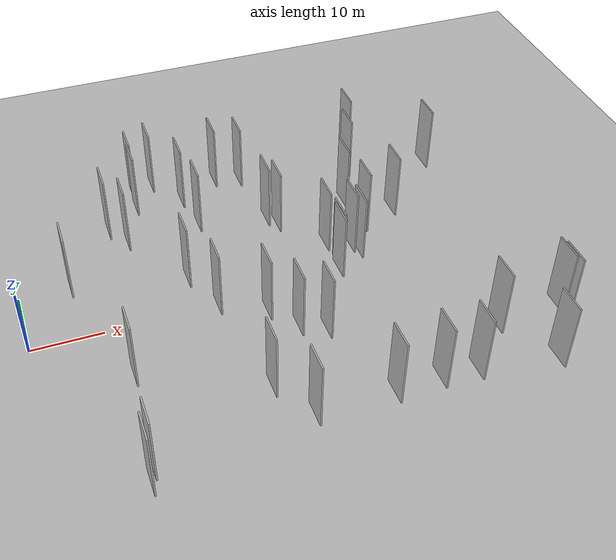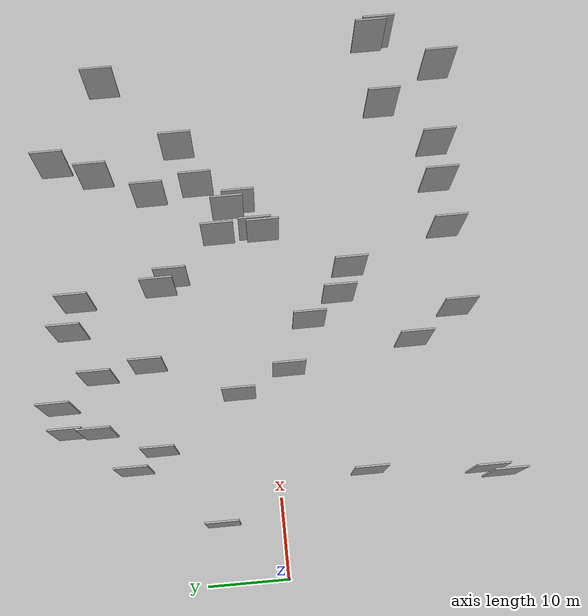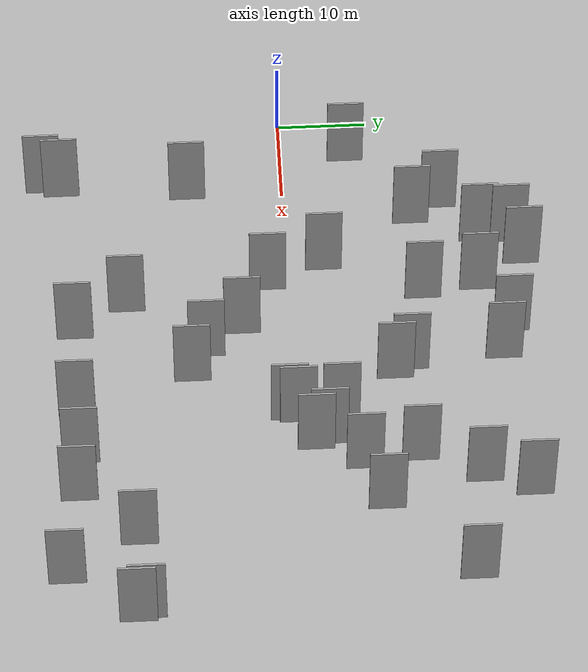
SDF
<?xml version="1.0" encoding="utf-8"?>

<sdf version="1.6">

   <world name="default">

      <gui fullscreen="0">

         <camera name="user_camera">

            <pose>-15 0 4.57585 0 0 0</pose>

            <view_controller>orbit</view_controller>

         </camera>

      </gui>

      <scene>

         <sky>

           <clouds>

             <speed>12</speed>

           </clouds>

         </sky>

         <ambient>0.4 0.4 0.4 1</ambient>

         <background>0.7 0.7 0.7 1</background>

         <shadows>1</shadows>

      </scene>

      <gravity>0 0 -9.8066</gravity>

      <magnetic_field>6e-06 2.3e-05 -4.2e-05</magnetic_field>

      <physics default="0" name="default_physics" type="ode">

         <ode>

            <solver>

               <type>quick</type>

               <iters>10</iters>

               <sor>1.0</sor>

               <use_dynamic_moi_rescaling>0</use_dynamic_moi_rescaling>

            </solver>

            <constraints>

               <cfm>0</cfm>

               <erp>0.2</erp>

               <contact_max_correcting_vel>100</contact_max_correcting_vel>

               <contact_surface_layer>0.001</contact_surface_layer>

            </constraints>

         </ode>

         <max_step_size>0.004</max_step_size>

         <real_time_factor>1</real_time_factor>

         <real_time_update_rate>250</real_time_update_rate>

      </physics>

      <light name="sun" type="directional">

         <cast_shadows>1</cast_shadows>

         <pose>0 0 10 0 0 0</pose>

         <diffuse>0.8 0.8 0.8 1</diffuse>

         <specular>0.2 0.2 0.2 1</specular>

         <attenuation>

            <range>1000</range>

            <constant>0.9</constant>

            <linear>0.01</linear>

            <quadratic>0.001</quadratic>

         </attenuation>

         <direction>-0.5 0.1 -0.9</direction>

      </light>

      <include>

         <name>ground_plane_1</name>

         <uri>model://HANNAS_ground_plane</uri>

         <pose>0 0 0  0 0 0</pose>

      </include>

      <include>

         <name>ground_plane_2</name>

         <uri>model://HANNAS_ground_plane</uri>

         <pose>100 0 0  0 0 0</pose>

      </include>

      <model name="HANNAS_wall_1">

         <static>1</static>

         <pose frame="">67.3422 -16.6134 2.5 0.000000 0.000000 1.570796</pose>

         <link name="link">

            <pose frame="">0 0 5.00 0 0 0</pose>

            <collision name="collision">

               <geometry>

                  <box>

                     <size>4.00 0.2 10.00</size>

                  </box>

               </geometry>

               <max_contacts>10</max_contacts>

               <surface>

                  <contact>

                     <ode/>

                  </contact>

                  <bounce/>

                  <friction>

                     <torsional>

                        <ode/>

                     </torsional>

                     <ode/>

                  </friction>

               </surface>

            </collision>

            <visual name="visual">

               <cast_shadows>0</cast_shadows>

               <geometry>

                  <box>

                     <size>4.00 0.2 10.00</size>

                  </box>

               </geometry>

               <material>

                  <script>

                     <uri>model://HANNAS_wall/materials/scripts</uri>

                     <uri>model://HANNAS_wall/materials/textures</uri>

                     <name>vrc/HANNAS_wall</name>

                  </script>

               </material>

            </visual>

            <self_collide>0</self_collide>

            <enable_wind>0</enable_wind>

            <kinematic>0</kinematic>

         </link>

      </model>

      <model name="HANNAS_wall_2">

         <static>1</static>

         <pose frame="">37.7142 11.1128 2.5 0.000000 0.000000 1.570796</pose>

         <link name="link">

            <pose frame="">0 0 5.00 0 0 0</pose>

            <collision name="collision">

               <geometry>

                  <box>

                     <size>4.00 0.2 10.00</size>

                  </box>

               </geometry>

               <max_contacts>10</max_contacts>

               <surface>

                  <contact>

                     <ode/>

                  </contact>

                  <bounce/>

                  <friction>

                     <torsional>

                        <ode/>

                     </torsional>

                     <ode/>

                  </friction>

               </surface>

            </collision>

            <visual name="visual">

               <cast_shadows>0</cast_shadows>

               <geometry>

                  <box>

                     <size>4.00 0.2 10.00</size>

                  </box>

               </geometry>

               <material>

                  <script>

                     <uri>model://HANNAS_wall/materials/scripts</uri>

                     <uri>model://HANNAS_wall/materials/textures</uri>

                     <name>vrc/HANNAS_wall</name>

                  </script>

               </material>

            </visual>

            <self_collide>0</self_collide>

            <enable_wind>0</enable_wind>

            <kinematic>0</kinematic>

         </link>

      </model>

      <model name="HANNAS_wall_3">

         <static>1</static>

         <pose frame="">54.7475 9.1924 2.5 0.000000 0.000000 1.570796</pose>

         <link name="link">

            <pose frame="">0 0 5.00 0 0 0</pose>

            <collision name="collision">

               <geometry>

                  <box>

                     <size>4.00 0.2 10.00</size>

                  </box>

               </geometry>

               <max_contacts>10</max_contacts>

               <surface>

                  <contact>

                     <ode/>

                  </contact>

                  <bounce/>

                  <friction>

                     <torsional>

                        <ode/>

                     </torsional>

                     <ode/>

                  </friction>

               </surface>

            </collision>

            <visual name="visual">

               <cast_shadows>0</cast_shadows>

               <geometry>

                  <box>

                     <size>4.00 0.2 10.00</size>

                  </box>

               </geometry>

               <material>

                  <script>

                     <uri>model://HANNAS_wall/materials/scripts</uri>

                     <uri>model://HANNAS_wall/materials/textures</uri>

                     <name>vrc/HANNAS_wall</name>

                  </script>

               </material>

            </visual>

            <self_collide>0</self_collide>

            <enable_wind>0</enable_wind>

            <kinematic>0</kinematic>

         </link>

      </model>

      <model name="HANNAS_wall_4">

         <static>1</static>

         <pose frame="">22.6346 25.9920 2.5 0.000000 0.000000 1.570796</pose>

         <link name="link">

            <pose frame="">0 0 5.00 0 0 0</pose>

            <collision name="collision">

               <geometry>

                  <box>

                     <size>4.00 0.2 10.00</size>

                  </box>

               </geometry>

               <max_contacts>10</max_contacts>

               <surface>

                  <contact>

                     <ode/>

                  </contact>

                  <bounce/>

                  <friction>

                     <torsional>

                        <ode/>

                     </torsional>

                     <ode/>

                  </friction>

               </surface>

            </collision>

            <visual name="visual">

               <cast_shadows>0</cast_shadows>

               <geometry>

                  <box>

                     <size>4.00 0.2 10.00</size>

                  </box>

               </geometry>

               <material>

                  <script>

                     <uri>model://HANNAS_wall/materials/scripts</uri>

                     <uri>model://HANNAS_wall/materials/textures</uri>

                     <name>vrc/HANNAS_wall</name>

                  </script>

               </material>

            </visual>

            <self_collide>0</self_collide>

            <enable_wind>0</enable_wind>

            <kinematic>0</kinematic>

         </link>

      </model>

      <model name="HANNAS_wall_5">

         <static>1</static>

         <pose frame="">27.3170 -17.8542 2.5 0.000000 0.000000 1.570796</pose>

         <link name="link">

            <pose frame="">0 0 5.00 0 0 0</pose>

            <collision name="collision">

               <geometry>

                  <box>

                     <size>4.00 0.2 10.00</size>

                  </box>

               </geometry>

               <max_contacts>10</max_contacts>

               <surface>

                  <contact>

                     <ode/>

                  </contact>

                  <bounce/>

                  <friction>

                     <torsional>

                        <ode/>

                     </torsional>

                     <ode/>

                  </friction>

               </surface>

            </collision>

            <visual name="visual">

               <cast_shadows>0</cast_shadows>

               <geometry>

                  <box>

                     <size>4.00 0.2 10.00</size>

                  </box>

               </geometry>

               <material>

                  <script>

                     <uri>model://HANNAS_wall/materials/scripts</uri>

                     <uri>model://HANNAS_wall/materials/textures</uri>

                     <name>vrc/HANNAS_wall</name>

                  </script>

               </material>

            </visual>

            <self_collide>0</self_collide>

            <enable_wind>0</enable_wind>

            <kinematic>0</kinematic>

         </link>

      </model>

      <model name="HANNAS_wall_6">

         <static>1</static>

         <pose frame="">42.7058 -0.6624 2.5 0.000000 0.000000 1.570796</pose>

         <link name="link">

            <pose frame="">0 0 5.00 0 0 0</pose>

            <collision name="collision">

               <geometry>

                  <box>

                     <size>4.00 0.2 10.00</size>

                  </box>

               </geometry>

               <max_contacts>10</max_contacts>

               <surface>

                  <contact>

                     <ode/>

                  </contact>

                  <bounce/>

                  <friction>

                     <torsional>

                        <ode/>

                     </torsional>

                     <ode/>

                  </friction>

               </surface>

            </collision>

            <visual name="visual">

               <cast_shadows>0</cast_shadows>

               <geometry>

                  <box>

                     <size>4.00 0.2 10.00</size>

                  </box>

               </geometry>

               <material>

                  <script>

                     <uri>model://HANNAS_wall/materials/scripts</uri>

                     <uri>model://HANNAS_wall/materials/textures</uri>

                     <name>vrc/HANNAS_wall</name>

                  </script>

               </material>

            </visual>

            <self_collide>0</self_collide>

            <enable_wind>0</enable_wind>

            <kinematic>0</kinematic>

         </link>

      </model>

      <model name="HANNAS_wall_7">

         <static>1</static>

         <pose frame="">19.4963 24.7932 2.5 0.000000 0.000000 1.570796</pose>

         <link name="link">

            <pose frame="">0 0 5.00 0 0 0</pose>

            <collision name="collision">

               <geometry>

                  <box>

                     <size>4.00 0.2 10.00</size>

                  </box>

               </geometry>

               <max_contacts>10</max_contacts>

               <surface>

                  <contact>

                     <ode/>

                  </contact>

                  <bounce/>

                  <friction>

                     <torsional>

                        <ode/>

                     </torsional>

                     <ode/>

                  </friction>

               </surface>

            </collision>

            <visual name="visual">

               <cast_shadows>0</cast_shadows>

               <geometry>

                  <box>

                     <size>4.00 0.2 10.00</size>

                  </box>

               </geometry>

               <material>

                  <script>

                     <uri>model://HANNAS_wall/materials/scripts</uri>

                     <uri>model://HANNAS_wall/materials/textures</uri>

                     <name>vrc/HANNAS_wall</name>

                  </script>

               </material>

            </visual>

            <self_collide>0</self_collide>

            <enable_wind>0</enable_wind>

            <kinematic>0</kinematic>

         </link>

      </model>

      <model name="HANNAS_wall_8">

         <static>1</static>

         <pose frame="">35.5507 23.1184 2.5 0.000000 0.000000 1.570796</pose>

         <link name="link">

            <pose frame="">0 0 5.00 0 0 0</pose>

            <collision name="collision">

               <geometry>

                  <box>

                     <size>4.00 0.2 10.00</size>

                  </box>

               </geometry>

               <max_contacts>10</max_contacts>

               <surface>

                  <contact>

                     <ode/>

                  </contact>

                  <bounce/>

                  <friction>

                     <torsional>

                        <ode/>

                     </torsional>

                     <ode/>

                  </friction>

               </surface>

            </collision>

            <visual name="visual">

               <cast_shadows>0</cast_shadows>

               <geometry>

                  <box>

                     <size>4.00 0.2 10.00</size>

                  </box>

               </geometry>

               <material>

                  <script>

                     <uri>model://HANNAS_wall/materials/scripts</uri>

                     <uri>model://HANNAS_wall/materials/textures</uri>

                     <name>vrc/HANNAS_wall</name>

                  </script>

               </material>

            </visual>

            <self_collide>0</self_collide>

            <enable_wind>0</enable_wind>

            <kinematic>0</kinematic>

         </link>

      </model>

      <model name="HANNAS_wall_9">

         <static>1</static>

         <pose frame="">11.8561 -10.7022 2.5 0.000000 0.000000 1.570796</pose>

         <link name="link">

            <pose frame="">0 0 5.00 0 0 0</pose>

            <collision name="collision">

               <geometry>

                  <box>

                     <size>4.00 0.2 10.00</size>

                  </box>

               </geometry>

               <max_contacts>10</max_contacts>

               <surface>

                  <contact>

                     <ode/>

                  </contact>

                  <bounce/>

                  <friction>

                     <torsional>

                        <ode/>

                     </torsional>

                     <ode/>

                  </friction>

               </surface>

            </collision>

            <visual name="visual">

               <cast_shadows>0</cast_shadows>

               <geometry>

                  <box>

                     <size>4.00 0.2 10.00</size>

                  </box>

               </geometry>

               <material>

                  <script>

                     <uri>model://HANNAS_wall/materials/scripts</uri>

                     <uri>model://HANNAS_wall/materials/textures</uri>

                     <name>vrc/HANNAS_wall</name>

                  </script>

               </material>

            </visual>

            <self_collide>0</self_collide>

            <enable_wind>0</enable_wind>

            <kinematic>0</kinematic>

         </link>

      </model>

      <model name="HANNAS_wall_10">

         <static>1</static>

         <pose frame="">30.8755 -5.2989 2.5 0.000000 0.000000 1.570796</pose>

         <link name="link">

            <pose frame="">0 0 5.00 0 0 0</pose>

            <collision name="collision">

               <geometry>

                  <box>

                     <size>4.00 0.2 10.00</size>

                  </box>

               </geometry>

               <max_contacts>10</max_contacts>

               <surface>

                  <contact>

                     <ode/>

                  </contact>

                  <bounce/>

                  <friction>

                     <torsional>

                        <ode/>

                     </torsional>

                     <ode/>

                  </friction>

               </surface>

            </collision>

            <visual name="visual">

               <cast_shadows>0</cast_shadows>

               <geometry>

                  <box>

                     <size>4.00 0.2 10.00</size>

                  </box>

               </geometry>

               <material>

                  <script>

                     <uri>model://HANNAS_wall/materials/scripts</uri>

                     <uri>model://HANNAS_wall/materials/textures</uri>

                     <name>vrc/HANNAS_wall</name>

                  </script>

               </material>

            </visual>

            <self_collide>0</self_collide>

            <enable_wind>0</enable_wind>

            <kinematic>0</kinematic>

         </link>

      </model>

      <model name="HANNAS_wall_11">

         <static>1</static>

         <pose frame="">67.7193 -17.6005 2.5 0.000000 0.000000 1.570796</pose>

         <link name="link">

            <pose frame="">0 0 5.00 0 0 0</pose>

            <collision name="collision">

               <geometry>

                  <box>

                     <size>4.00 0.2 10.00</size>

                  </box>

               </geometry>

               <max_contacts>10</max_contacts>

               <surface>

                  <contact>

                     <ode/>

                  </contact>

                  <bounce/>

                  <friction>

                     <torsional>

                        <ode/>

                     </torsional>

                     <ode/>

                  </friction>

               </surface>

            </collision>

            <visual name="visual">

               <cast_shadows>0</cast_shadows>

               <geometry>

                  <box>

                     <size>4.00 0.2 10.00</size>

                  </box>

               </geometry>

               <material>

                  <script>

                     <uri>model://HANNAS_wall/materials/scripts</uri>

                     <uri>model://HANNAS_wall/materials/textures</uri>

                     <name>vrc/HANNAS_wall</name>

                  </script>

               </material>

            </visual>

            <self_collide>0</self_collide>

            <enable_wind>0</enable_wind>

            <kinematic>0</kinematic>

         </link>

      </model>

      <model name="HANNAS_wall_12">

         <static>1</static>

         <pose frame="">53.6920 25.0556 2.5 0.000000 0.000000 1.570796</pose>

         <link name="link">

            <pose frame="">0 0 5.00 0 0 0</pose>

            <collision name="collision">

               <geometry>

                  <box>

                     <size>4.00 0.2 10.00</size>

                  </box>

               </geometry>

               <max_contacts>10</max_contacts>

               <surface>

                  <contact>

                     <ode/>

                  </contact>

                  <bounce/>

                  <friction>

                     <torsional>

                        <ode/>

                     </torsional>

                     <ode/>

                  </friction>

               </surface>

            </collision>

            <visual name="visual">

               <cast_shadows>0</cast_shadows>

               <geometry>

                  <box>

                     <size>4.00 0.2 10.00</size>

                  </box>

               </geometry>

               <material>

                  <script>

                     <uri>model://HANNAS_wall/materials/scripts</uri>

                     <uri>model://HANNAS_wall/materials/textures</uri>

                     <name>vrc/HANNAS_wall</name>

                  </script>

               </material>

            </visual>

            <self_collide>0</self_collide>

            <enable_wind>0</enable_wind>

            <kinematic>0</kinematic>

         </link>

      </model>

      <model name="HANNAS_wall_13">

         <static>1</static>

         <pose frame="">41.1027 -23.5649 2.5 0.000000 0.000000 1.570796</pose>

         <link name="link">

            <pose frame="">0 0 5.00 0 0 0</pose>

            <collision name="collision">

               <geometry>

                  <box>

                     <size>4.00 0.2 10.00</size>

                  </box>

               </geometry>

               <max_contacts>10</max_contacts>

               <surface>

                  <contact>

                     <ode/>

                  </contact>

                  <bounce/>

                  <friction>

                     <torsional>

                        <ode/>

                     </torsional>

                     <ode/>

                  </friction>

               </surface>

            </collision>

            <visual name="visual">

               <cast_shadows>0</cast_shadows>

               <geometry>

                  <box>

                     <size>4.00 0.2 10.00</size>

                  </box>

               </geometry>

               <material>

                  <script>

                     <uri>model://HANNAS_wall/materials/scripts</uri>

                     <uri>model://HANNAS_wall/materials/textures</uri>

                     <name>vrc/HANNAS_wall</name>

                  </script>

               </material>

            </visual>

            <self_collide>0</self_collide>

            <enable_wind>0</enable_wind>

            <kinematic>0</kinematic>

         </link>

      </model>

      <model name="HANNAS_wall_14">

         <static>1</static>

         <pose frame="">7.1242 7.2730 2.5 0.000000 0.000000 1.570796</pose>

         <link name="link">

            <pose frame="">0 0 5.00 0 0 0</pose>

            <collision name="collision">

               <geometry>

                  <box>

                     <size>4.00 0.2 10.00</size>

                  </box>

               </geometry>

               <max_contacts>10</max_contacts>

               <surface>

                  <contact>

                     <ode/>

                  </contact>

                  <bounce/>

                  <friction>

                     <torsional>

                        <ode/>

                     </torsional>

                     <ode/>

                  </friction>

               </surface>

            </collision>

            <visual name="visual">

               <cast_shadows>0</cast_shadows>

               <geometry>

                  <box>

                     <size>4.00 0.2 10.00</size>

                  </box>

               </geometry>

               <material>

                  <script>

                     <uri>model://HANNAS_wall/materials/scripts</uri>

                     <uri>model://HANNAS_wall/materials/textures</uri>

                     <name>vrc/HANNAS_wall</name>

                  </script>

               </material>

            </visual>

            <self_collide>0</self_collide>

            <enable_wind>0</enable_wind>

            <kinematic>0</kinematic>

         </link>

      </model>

      <model name="HANNAS_wall_15">

         <static>1</static>

         <pose frame="">16.4103 14.1137 2.5 0.000000 0.000000 1.570796</pose>

         <link name="link">

            <pose frame="">0 0 5.00 0 0 0</pose>

            <collision name="collision">

               <geometry>

                  <box>

                     <size>4.00 0.2 10.00</size>

                  </box>

               </geometry>

               <max_contacts>10</max_contacts>

               <surface>

                  <contact>

                     <ode/>

                  </contact>

                  <bounce/>

                  <friction>

                     <torsional>

                        <ode/>

                     </torsional>

                     <ode/>

                  </friction>

               </surface>

            </collision>

            <visual name="visual">

               <cast_shadows>0</cast_shadows>

               <geometry>

                  <box>

                     <size>4.00 0.2 10.00</size>

                  </box>

               </geometry>

               <material>

                  <script>

                     <uri>model://HANNAS_wall/materials/scripts</uri>

                     <uri>model://HANNAS_wall/materials/textures</uri>

                     <name>vrc/HANNAS_wall</name>

                  </script>

               </material>

            </visual>

            <self_collide>0</self_collide>

            <enable_wind>0</enable_wind>

            <kinematic>0</kinematic>

         </link>

      </model>

      <model name="HANNAS_wall_16">

         <static>1</static>

         <pose frame="">24.9973 -2.2562 2.5 0.000000 0.000000 1.570796</pose>

         <link name="link">

            <pose frame="">0 0 5.00 0 0 0</pose>

            <collision name="collision">

               <geometry>

                  <box>

                     <size>4.00 0.2 10.00</size>

                  </box>

               </geometry>

               <max_contacts>10</max_contacts>

               <surface>

                  <contact>

                     <ode/>

                  </contact>

                  <bounce/>

                  <friction>

                     <torsional>

                        <ode/>

                     </torsional>

                     <ode/>

                  </friction>

               </surface>

            </collision>

            <visual name="visual">

               <cast_shadows>0</cast_shadows>

               <geometry>

                  <box>

                     <size>4.00 0.2 10.00</size>

                  </box>

               </geometry>

               <material>

                  <script>

                     <uri>model://HANNAS_wall/materials/scripts</uri>

                     <uri>model://HANNAS_wall/materials/textures</uri>

                     <name>vrc/HANNAS_wall</name>

                  </script>

               </material>

            </visual>

            <self_collide>0</self_collide>

            <enable_wind>0</enable_wind>

            <kinematic>0</kinematic>

         </link>

      </model>

      <model name="HANNAS_wall_17">

         <static>1</static>

         <pose frame="">33.7942 -9.2755 2.5 0.000000 0.000000 1.570796</pose>

         <link name="link">

            <pose frame="">0 0 5.00 0 0 0</pose>

            <collision name="collision">

               <geometry>

                  <box>

                     <size>4.00 0.2 10.00</size>

                  </box>

               </geometry>

               <max_contacts>10</max_contacts>

               <surface>

                  <contact>

                     <ode/>

                  </contact>

                  <bounce/>

                  <friction>

                     <torsional>

                        <ode/>

                     </torsional>

                     <ode/>

                  </friction>

               </surface>

            </collision>

            <visual name="visual">

               <cast_shadows>0</cast_shadows>

               <geometry>

                  <box>

                     <size>4.00 0.2 10.00</size>

                  </box>

               </geometry>

               <material>

                  <script>

                     <uri>model://HANNAS_wall/materials/scripts</uri>

                     <uri>model://HANNAS_wall/materials/textures</uri>

                     <name>vrc/HANNAS_wall</name>

                  </script>

               </material>

            </visual>

            <self_collide>0</self_collide>

            <enable_wind>0</enable_wind>

            <kinematic>0</kinematic>

         </link>

      </model>

      <model name="HANNAS_wall_18">

         <static>1</static>

         <pose frame="">49.4468 7.1205 2.5 0.000000 0.000000 1.570796</pose>

         <link name="link">

            <pose frame="">0 0 5.00 0 0 0</pose>

            <collision name="collision">

               <geometry>

                  <box>

                     <size>4.00 0.2 10.00</size>

                  </box>

               </geometry>

               <max_contacts>10</max_contacts>

               <surface>

                  <contact>

                     <ode/>

                  </contact>

                  <bounce/>

                  <friction>

                     <torsional>

                        <ode/>

                     </torsional>

                     <ode/>

                  </friction>

               </surface>

            </collision>

            <visual name="visual">

               <cast_shadows>0</cast_shadows>

               <geometry>

                  <box>

                     <size>4.00 0.2 10.00</size>

                  </box>

               </geometry>

               <material>

                  <script>

                     <uri>model://HANNAS_wall/materials/scripts</uri>

                     <uri>model://HANNAS_wall/materials/textures</uri>

                     <name>vrc/HANNAS_wall</name>

                  </script>

               </material>

            </visual>

            <self_collide>0</self_collide>

            <enable_wind>0</enable_wind>

            <kinematic>0</kinematic>

         </link>

      </model>

      <model name="HANNAS_wall_19">

         <static>1</static>

         <pose frame="">10.8008 -24.8072 2.5 0.000000 0.000000 1.570796</pose>

         <link name="link">

            <pose frame="">0 0 5.00 0 0 0</pose>

            <collision name="collision">

               <geometry>

                  <box>

                     <size>4.00 0.2 10.00</size>

                  </box>

               </geometry>

               <max_contacts>10</max_contacts>

               <surface>

                  <contact>

                     <ode/>

                  </contact>

                  <bounce/>

                  <friction>

                     <torsional>

                        <ode/>

                     </torsional>

                     <ode/>

                  </friction>

               </surface>

            </collision>

            <visual name="visual">

               <cast_shadows>0</cast_shadows>

               <geometry>

                  <box>

                     <size>4.00 0.2 10.00</size>

                  </box>

               </geometry>

               <material>

                  <script>

                     <uri>model://HANNAS_wall/materials/scripts</uri>

                     <uri>model://HANNAS_wall/materials/textures</uri>

                     <name>vrc/HANNAS_wall</name>

                  </script>

               </material>

            </visual>

            <self_collide>0</self_collide>

            <enable_wind>0</enable_wind>

            <kinematic>0</kinematic>

         </link>

      </model>

      <model name="HANNAS_wall_20">

         <static>1</static>

         <pose frame="">31.9187 24.2031 2.5 0.000000 0.000000 1.570796</pose>

         <link name="link">

            <pose frame="">0 0 5.00 0 0 0</pose>

            <collision name="collision">

               <geometry>

                  <box>

                     <size>4.00 0.2 10.00</size>

                  </box>

               </geometry>

               <max_contacts>10</max_contacts>

               <surface>

                  <contact>

                     <ode/>

                  </contact>

                  <bounce/>

                  <friction>

                     <torsional>

                        <ode/>

                     </torsional>

                     <ode/>

                  </friction>

               </surface>

            </collision>

            <visual name="visual">

               <cast_shadows>0</cast_shadows>

               <geometry>

                  <box>

                     <size>4.00 0.2 10.00</size>

                  </box>

               </geometry>

               <material>

                  <script>

                     <uri>model://HANNAS_wall/materials/scripts</uri>

                     <uri>model://HANNAS_wall/materials/textures</uri>

                     <name>vrc/HANNAS_wall</name>

                  </script>

               </material>

            </visual>

            <self_collide>0</self_collide>

            <enable_wind>0</enable_wind>

            <kinematic>0</kinematic>

         </link>

      </model>

      <model name="HANNAS_wall_21">

         <static>1</static>

         <pose frame="">10.1541 -26.7928 2.5 0.000000 0.000000 1.570796</pose>

         <link name="link">

            <pose frame="">0 0 5.00 0 0 0</pose>

            <collision name="collision">

               <geometry>

                  <box>

                     <size>4.00 0.2 10.00</size>

                  </box>

               </geometry>

               <max_contacts>10</max_contacts>

               <surface>

                  <contact>

                     <ode/>

                  </contact>

                  <bounce/>

                  <friction>

                     <torsional>

                        <ode/>

                     </torsional>

                     <ode/>

                  </friction>

               </surface>

            </collision>

            <visual name="visual">

               <cast_shadows>0</cast_shadows>

               <geometry>

                  <box>

                     <size>4.00 0.2 10.00</size>

                  </box>

               </geometry>

               <material>

                  <script>

                     <uri>model://HANNAS_wall/materials/scripts</uri>

                     <uri>model://HANNAS_wall/materials/textures</uri>

                     <name>vrc/HANNAS_wall</name>

                  </script>

               </material>

            </visual>

            <self_collide>0</self_collide>

            <enable_wind>0</enable_wind>

            <kinematic>0</kinematic>

         </link>

      </model>

      <model name="HANNAS_wall_22">

         <static>1</static>

         <pose frame="">48.6685 13.1339 2.5 0.000000 0.000000 1.570796</pose>

         <link name="link">

            <pose frame="">0 0 5.00 0 0 0</pose>

            <collision name="collision">

               <geometry>

                  <box>

                     <size>4.00 0.2 10.00</size>

                  </box>

               </geometry>

               <max_contacts>10</max_contacts>

               <surface>

                  <contact>

                     <ode/>

                  </contact>

                  <bounce/>

                  <friction>

                     <torsional>

                        <ode/>

                     </torsional>

                     <ode/>

                  </friction>

               </surface>

            </collision>

            <visual name="visual">

               <cast_shadows>0</cast_shadows>

               <geometry>

                  <box>

                     <size>4.00 0.2 10.00</size>

                  </box>

               </geometry>

               <material>

                  <script>

                     <uri>model://HANNAS_wall/materials/scripts</uri>

                     <uri>model://HANNAS_wall/materials/textures</uri>

                     <name>vrc/HANNAS_wall</name>

                  </script>

               </material>

            </visual>

            <self_collide>0</self_collide>

            <enable_wind>0</enable_wind>

            <kinematic>0</kinematic>

         </link>

      </model>

      <model name="HANNAS_wall_23">

         <static>1</static>

         <pose frame="">19.2540 21.3739 2.5 0.000000 0.000000 1.570796</pose>

         <link name="link">

            <pose frame="">0 0 5.00 0 0 0</pose>

            <collision name="collision">

               <geometry>

                  <box>

                     <size>4.00 0.2 10.00</size>

                  </box>

               </geometry>

               <max_contacts>10</max_contacts>

               <surface>

                  <contact>

                     <ode/>

                  </contact>

                  <bounce/>

                  <friction>

                     <torsional>

                        <ode/>

                     </torsional>

                     <ode/>

                  </friction>

               </surface>

            </collision>

            <visual name="visual">

               <cast_shadows>0</cast_shadows>

               <geometry>

                  <box>

                     <size>4.00 0.2 10.00</size>

                  </box>

               </geometry>

               <material>

                  <script>

                     <uri>model://HANNAS_wall/materials/scripts</uri>

                     <uri>model://HANNAS_wall/materials/textures</uri>

                     <name>vrc/HANNAS_wall</name>

                  </script>

               </material>

            </visual>

            <self_collide>0</self_collide>

            <enable_wind>0</enable_wind>

            <kinematic>0</kinematic>

         </link>

      </model>

      <model name="HANNAS_wall_24">

         <static>1</static>

         <pose frame="">42.7787 4.9533 2.5 0.000000 0.000000 1.570796</pose>

         <link name="link">

            <pose frame="">0 0 5.00 0 0 0</pose>

            <collision name="collision">

               <geometry>

                  <box>

                     <size>4.00 0.2 10.00</size>

                  </box>

               </geometry>

               <max_contacts>10</max_contacts>

               <surface>

                  <contact>

                     <ode/>

                  </contact>

                  <bounce/>

                  <friction>

                     <torsional>

                        <ode/>

                     </torsional>

                     <ode/>

                  </friction>

               </surface>

            </collision>

            <visual name="visual">

               <cast_shadows>0</cast_shadows>

               <geometry>

                  <box>

                     <size>4.00 0.2 10.00</size>

                  </box>

               </geometry>

               <material>

                  <script>

                     <uri>model://HANNAS_wall/materials/scripts</uri>

                     <uri>model://HANNAS_wall/materials/textures</uri>

                     <name>vrc/HANNAS_wall</name>

                  </script>

               </material>

            </visual>

            <self_collide>0</self_collide>

            <enable_wind>0</enable_wind>

            <kinematic>0</kinematic>

         </link>

      </model>

      <model name="HANNAS_wall_25">

         <static>1</static>

         <pose frame="">30.7555 -23.6122 2.5 0.000000 0.000000 1.570796</pose>

         <link name="link">

            <pose frame="">0 0 5.00 0 0 0</pose>

            <collision name="collision">

               <geometry>

                  <box>

                     <size>4.00 0.2 10.00</size>

                  </box>

               </geometry>

               <max_contacts>10</max_contacts>

               <surface>

                  <contact>

                     <ode/>

                  </contact>

                  <bounce/>

                  <friction>

                     <torsional>

                        <ode/>

                     </torsional>

                     <ode/>

                  </friction>

               </surface>

            </collision>

            <visual name="visual">

               <cast_shadows>0</cast_shadows>

               <geometry>

                  <box>

                     <size>4.00 0.2 10.00</size>

                  </box>

               </geometry>

               <material>

                  <script>

                     <uri>model://HANNAS_wall/materials/scripts</uri>

                     <uri>model://HANNAS_wall/materials/textures</uri>

                     <name>vrc/HANNAS_wall</name>

                  </script>

               </material>

            </visual>

            <self_collide>0</self_collide>

            <enable_wind>0</enable_wind>

            <kinematic>0</kinematic>

         </link>

      </model>

      <model name="HANNAS_wall_26">

         <static>1</static>

         <pose frame="">51.7368 19.8329 2.5 0.000000 0.000000 1.570796</pose>

         <link name="link">

            <pose frame="">0 0 5.00 0 0 0</pose>

            <collision name="collision">

               <geometry>

                  <box>

                     <size>4.00 0.2 10.00</size>

                  </box>

               </geometry>

               <max_contacts>10</max_contacts>

               <surface>

                  <contact>

                     <ode/>

                  </contact>

                  <bounce/>

                  <friction>

                     <torsional>

                        <ode/>

                     </torsional>

                     <ode/>

                  </friction>

               </surface>

            </collision>

            <visual name="visual">

               <cast_shadows>0</cast_shadows>

               <geometry>

                  <box>

                     <size>4.00 0.2 10.00</size>

                  </box>

               </geometry>

               <material>

                  <script>

                     <uri>model://HANNAS_wall/materials/scripts</uri>

                     <uri>model://HANNAS_wall/materials/textures</uri>

                     <name>vrc/HANNAS_wall</name>

                  </script>

               </material>

            </visual>

            <self_collide>0</self_collide>

            <enable_wind>0</enable_wind>

            <kinematic>0</kinematic>

         </link>

      </model>

      <model name="HANNAS_wall_27">

         <static>1</static>

         <pose frame="">26.0303 20.9294 2.5 0.000000 0.000000 1.570796</pose>

         <link name="link">

            <pose frame="">0 0 5.00 0 0 0</pose>

            <collision name="collision">

               <geometry>

                  <box>

                     <size>4.00 0.2 10.00</size>

                  </box>

               </geometry>

               <max_contacts>10</max_contacts>

               <surface>

                  <contact>

                     <ode/>

                  </contact>

                  <bounce/>

                  <friction>

                     <torsional>

                        <ode/>

                     </torsional>

                     <ode/>

                  </friction>

               </surface>

            </collision>

            <visual name="visual">

               <cast_shadows>0</cast_shadows>

               <geometry>

                  <box>

                     <size>4.00 0.2 10.00</size>

                  </box>

               </geometry>

               <material>

                  <script>

                     <uri>model://HANNAS_wall/materials/scripts</uri>

                     <uri>model://HANNAS_wall/materials/textures</uri>

                     <name>vrc/HANNAS_wall</name>

                  </script>

               </material>

            </visual>

            <self_collide>0</self_collide>

            <enable_wind>0</enable_wind>

            <kinematic>0</kinematic>

         </link>

      </model>

      <model name="HANNAS_wall_28">

         <static>1</static>

         <pose frame="">58.0857 -17.2474 2.5 0.000000 0.000000 1.570796</pose>

         <link name="link">

            <pose frame="">0 0 5.00 0 0 0</pose>

            <collision name="collision">

               <geometry>

                  <box>

                     <size>4.00 0.2 10.00</size>

                  </box>

               </geometry>

               <max_contacts>10</max_contacts>

               <surface>

                  <contact>

                     <ode/>

                  </contact>

                  <bounce/>

                  <friction>

                     <torsional>

                        <ode/>

                     </torsional>

                     <ode/>

                  </friction>

               </surface>

            </collision>

            <visual name="visual">

               <cast_shadows>0</cast_shadows>

               <geometry>

                  <box>

                     <size>4.00 0.2 10.00</size>

                  </box>

               </geometry>

               <material>

                  <script>

                     <uri>model://HANNAS_wall/materials/scripts</uri>

                     <uri>model://HANNAS_wall/materials/textures</uri>

                     <name>vrc/HANNAS_wall</name>

                  </script>

               </material>

            </visual>

            <self_collide>0</self_collide>

            <enable_wind>0</enable_wind>

            <kinematic>0</kinematic>

         </link>

      </model>

      <model name="HANNAS_wall_29">

         <static>1</static>

         <pose frame="">47.2939 -23.2404 2.5 0.000000 0.000000 1.570796</pose>

         <link name="link">

            <pose frame="">0 0 5.00 0 0 0</pose>

            <collision name="collision">

               <geometry>

                  <box>

                     <size>4.00 0.2 10.00</size>

                  </box>

               </geometry>

               <max_contacts>10</max_contacts>

               <surface>

                  <contact>

                     <ode/>

                  </contact>

                  <bounce/>

                  <friction>

                     <torsional>

                        <ode/>

                     </torsional>

                     <ode/>

                  </friction>

               </surface>

            </collision>

            <visual name="visual">

               <cast_shadows>0</cast_shadows>

               <geometry>

                  <box>

                     <size>4.00 0.2 10.00</size>

                  </box>

               </geometry>

               <material>

                  <script>

                     <uri>model://HANNAS_wall/materials/scripts</uri>

                     <uri>model://HANNAS_wall/materials/textures</uri>

                     <name>vrc/HANNAS_wall</name>

                  </script>

               </material>

            </visual>

            <self_collide>0</self_collide>

            <enable_wind>0</enable_wind>

            <kinematic>0</kinematic>

         </link>

      </model>

      <model name="HANNAS_wall_30">

         <static>1</static>

         <pose frame="">46.0446 3.4954 2.5 0.000000 0.000000 1.570796</pose>

         <link name="link">

            <pose frame="">0 0 5.00 0 0 0</pose>

            <collision name="collision">

               <geometry>

                  <box>

                     <size>4.00 0.2 10.00</size>

                  </box>

               </geometry>

               <max_contacts>10</max_contacts>

               <surface>

                  <contact>

                     <ode/>

                  </contact>

                  <bounce/>

                  <friction>

                     <torsional>

                        <ode/>

                     </torsional>

                     <ode/>

                  </friction>

               </surface>

            </collision>

            <visual name="visual">

               <cast_shadows>0</cast_shadows>

               <geometry>

                  <box>

                     <size>4.00 0.2 10.00</size>

                  </box>

               </geometry>

               <material>

                  <script>

                     <uri>model://HANNAS_wall/materials/scripts</uri>

                     <uri>model://HANNAS_wall/materials/textures</uri>

                     <name>vrc/HANNAS_wall</name>

                  </script>

               </material>

            </visual>

            <self_collide>0</self_collide>

            <enable_wind>0</enable_wind>

            <kinematic>0</kinematic>

         </link>

      </model>

      <model name="HANNAS_wall_31">

         <static>1</static>

         <pose frame="">64.0466 18.2950 2.5 0.000000 0.000000 1.570796</pose>

         <link name="link">

            <pose frame="">0 0 5.00 0 0 0</pose>

            <collision name="collision">

               <geometry>

                  <box>

                     <size>4.00 0.2 10.00</size>

                  </box>

               </geometry>

               <max_contacts>10</max_contacts>

               <surface>

                  <contact>

                     <ode/>

                  </contact>

                  <bounce/>

                  <friction>

                     <torsional>

                        <ode/>

                     </torsional>

                     <ode/>

                  </friction>

               </surface>

            </collision>

            <visual name="visual">

               <cast_shadows>0</cast_shadows>

               <geometry>

                  <box>

                     <size>4.00 0.2 10.00</size>

                  </box>

               </geometry>

               <material>

                  <script>

                     <uri>model://HANNAS_wall/materials/scripts</uri>

                     <uri>model://HANNAS_wall/materials/textures</uri>

                     <name>vrc/HANNAS_wall</name>

                  </script>

               </material>

            </visual>

            <self_collide>0</self_collide>

            <enable_wind>0</enable_wind>

            <kinematic>0</kinematic>

         </link>

      </model>

      <model name="HANNAS_wall_32">

         <static>1</static>

         <pose frame="">26.9515 14.8065 2.5 0.000000 0.000000 1.570796</pose>

         <link name="link">

            <pose frame="">0 0 5.00 0 0 0</pose>

            <collision name="collision">

               <geometry>

                  <box>

                     <size>4.00 0.2 10.00</size>

                  </box>

               </geometry>

               <max_contacts>10</max_contacts>

               <surface>

                  <contact>

                     <ode/>

                  </contact>

                  <bounce/>

                  <friction>

                     <torsional>

                        <ode/>

                     </torsional>

                     <ode/>

                  </friction>

               </surface>

            </collision>

            <visual name="visual">

               <cast_shadows>0</cast_shadows>

               <geometry>

                  <box>

                     <size>4.00 0.2 10.00</size>

                  </box>

               </geometry>

               <material>

                  <script>

                     <uri>model://HANNAS_wall/materials/scripts</uri>

                     <uri>model://HANNAS_wall/materials/textures</uri>

                     <name>vrc/HANNAS_wall</name>

                  </script>

               </material>

            </visual>

            <self_collide>0</self_collide>

            <enable_wind>0</enable_wind>

            <kinematic>0</kinematic>

         </link>

      </model>

      <model name="HANNAS_wall_33">

         <static>1</static>

         <pose frame="">52.1921 -23.5027 2.5 0.000000 0.000000 1.570796</pose>

         <link name="link">

            <pose frame="">0 0 5.00 0 0 0</pose>

            <collision name="collision">

               <geometry>

                  <box>

                     <size>4.00 0.2 10.00</size>

                  </box>

               </geometry>

               <max_contacts>10</max_contacts>

               <surface>

                  <contact>

                     <ode/>

                  </contact>

                  <bounce/>

                  <friction>

                     <torsional>

                        <ode/>

                     </torsional>

                     <ode/>

                  </friction>

               </surface>

            </collision>

            <visual name="visual">

               <cast_shadows>0</cast_shadows>

               <geometry>

                  <box>

                     <size>4.00 0.2 10.00</size>

                  </box>

               </geometry>

               <material>

                  <script>

                     <uri>model://HANNAS_wall/materials/scripts</uri>

                     <uri>model://HANNAS_wall/materials/textures</uri>

                     <name>vrc/HANNAS_wall</name>

                  </script>

               </material>

            </visual>

            <self_collide>0</self_collide>

            <enable_wind>0</enable_wind>

            <kinematic>0</kinematic>

         </link>

      </model>

      <model name="HANNAS_wall_34">

         <static>1</static>

         <pose frame="">37.0742 -10.9308 2.5 0.000000 0.000000 1.570796</pose>

         <link name="link">

            <pose frame="">0 0 5.00 0 0 0</pose>

            <collision name="collision">

               <geometry>

                  <box>

                     <size>4.00 0.2 10.00</size>

                  </box>

               </geometry>

               <max_contacts>10</max_contacts>

               <surface>

                  <contact>

                     <ode/>

                  </contact>

                  <bounce/>

                  <friction>

                     <torsional>

                        <ode/>

                     </torsional>

                     <ode/>

                  </friction>

               </surface>

            </collision>

            <visual name="visual">

               <cast_shadows>0</cast_shadows>

               <geometry>

                  <box>

                     <size>4.00 0.2 10.00</size>

                  </box>

               </geometry>

               <material>

                  <script>

                     <uri>model://HANNAS_wall/materials/scripts</uri>

                     <uri>model://HANNAS_wall/materials/textures</uri>

                     <name>vrc/HANNAS_wall</name>

                  </script>

               </material>

            </visual>

            <self_collide>0</self_collide>

            <enable_wind>0</enable_wind>

            <kinematic>0</kinematic>

         </link>

      </model>

      <model name="HANNAS_wall_35">

         <static>1</static>

         <pose frame="">43.0442 0.3076 2.5 0.000000 0.000000 1.570796</pose>

         <link name="link">

            <pose frame="">0 0 5.00 0 0 0</pose>

            <collision name="collision">

               <geometry>

                  <box>

                     <size>4.00 0.2 10.00</size>

                  </box>

               </geometry>

               <max_contacts>10</max_contacts>

               <surface>

                  <contact>

                     <ode/>

                  </contact>

                  <bounce/>

                  <friction>

                     <torsional>

                        <ode/>

                     </torsional>

                     <ode/>

                  </friction>

               </surface>

            </collision>

            <visual name="visual">

               <cast_shadows>0</cast_shadows>

               <geometry>

                  <box>

                     <size>4.00 0.2 10.00</size>

                  </box>

               </geometry>

               <material>

                  <script>

                     <uri>model://HANNAS_wall/materials/scripts</uri>

                     <uri>model://HANNAS_wall/materials/textures</uri>

                     <name>vrc/HANNAS_wall</name>

                  </script>

               </material>

            </visual>

            <self_collide>0</self_collide>

            <enable_wind>0</enable_wind>

            <kinematic>0</kinematic>

         </link>

      </model>

      <model name="HANNAS_wall_36">

         <static>1</static>

         <pose frame="">14.3245 17.3363 2.5 0.000000 0.000000 1.570796</pose>

         <link name="link">

            <pose frame="">0 0 5.00 0 0 0</pose>

            <collision name="collision">

               <geometry>

                  <box>

                     <size>4.00 0.2 10.00</size>

                  </box>

               </geometry>

               <max_contacts>10</max_contacts>

               <surface>

                  <contact>

                     <ode/>

                  </contact>

                  <bounce/>

                  <friction>

                     <torsional>

                        <ode/>

                     </torsional>

                     <ode/>

                  </friction>

               </surface>

            </collision>

            <visual name="visual">

               <cast_shadows>0</cast_shadows>

               <geometry>

                  <box>

                     <size>4.00 0.2 10.00</size>

                  </box>

               </geometry>

               <material>

                  <script>

                     <uri>model://HANNAS_wall/materials/scripts</uri>

                     <uri>model://HANNAS_wall/materials/textures</uri>

                     <name>vrc/HANNAS_wall</name>

                  </script>

               </material>

            </visual>

            <self_collide>0</self_collide>

            <enable_wind>0</enable_wind>

            <kinematic>0</kinematic>

         </link>

      </model>

      <model name="HANNAS_wall_37">

         <static>1</static>

         <pose frame="">46.7115 2.0470 2.5 0.000000 0.000000 1.570796</pose>

         <link name="link">

            <pose frame="">0 0 5.00 0 0 0</pose>

            <collision name="collision">

               <geometry>

                  <box>

                     <size>4.00 0.2 10.00</size>

                  </box>

               </geometry>

               <max_contacts>10</max_contacts>

               <surface>

                  <contact>

                     <ode/>

                  </contact>

                  <bounce/>

                  <friction>

                     <torsional>

                        <ode/>

                     </torsional>

                     <ode/>

                  </friction>

               </surface>

            </collision>

            <visual name="visual">

               <cast_shadows>0</cast_shadows>

               <geometry>

                  <box>

                     <size>4.00 0.2 10.00</size>

                  </box>

               </geometry>

               <material>

                  <script>

                     <uri>model://HANNAS_wall/materials/scripts</uri>

                     <uri>model://HANNAS_wall/materials/textures</uri>

                     <name>vrc/HANNAS_wall</name>

                  </script>

               </material>

            </visual>

            <self_collide>0</self_collide>

            <enable_wind>0</enable_wind>

            <kinematic>0</kinematic>

         </link>

      </model>

      <model name="HANNAS_wall_38">

         <static>1</static>

         <pose frame="">62.6575 -24.9414 2.5 0.000000 0.000000 1.570796</pose>

         <link name="link">

            <pose frame="">0 0 5.00 0 0 0</pose>

            <collision name="collision">

               <geometry>

                  <box>

                     <size>4.00 0.2 10.00</size>

                  </box>

               </geometry>

               <max_contacts>10</max_contacts>

               <surface>

                  <contact>

                     <ode/>

                  </contact>

                  <bounce/>

                  <friction>

                     <torsional>

                        <ode/>

                     </torsional>

                     <ode/>

                  </friction>

               </surface>

            </collision>

            <visual name="visual">

               <cast_shadows>0</cast_shadows>

               <geometry>

                  <box>

                     <size>4.00 0.2 10.00</size>

                  </box>

               </geometry>

               <material>

                  <script>

                     <uri>model://HANNAS_wall/materials/scripts</uri>

                     <uri>model://HANNAS_wall/materials/textures</uri>

                     <name>vrc/HANNAS_wall</name>

                  </script>

               </material>

            </visual>

            <self_collide>0</self_collide>

            <enable_wind>0</enable_wind>

            <kinematic>0</kinematic>

         </link>

      </model>

      <model name="HANNAS_wall_39">

         <static>1</static>

         <pose frame="">22.4967 4.0572 2.5 0.000000 0.000000 1.570796</pose>

         <link name="link">

            <pose frame="">0 0 5.00 0 0 0</pose>

            <collision name="collision">

               <geometry>

                  <box>

                     <size>4.00 0.2 10.00</size>

                  </box>

               </geometry>

               <max_contacts>10</max_contacts>

               <surface>

                  <contact>

                     <ode/>

                  </contact>

                  <bounce/>

                  <friction>

                     <torsional>

                        <ode/>

                     </torsional>

                     <ode/>

                  </friction>

               </surface>

            </collision>

            <visual name="visual">

               <cast_shadows>0</cast_shadows>

               <geometry>

                  <box>

                     <size>4.00 0.2 10.00</size>

                  </box>

               </geometry>

               <material>

                  <script>

                     <uri>model://HANNAS_wall/materials/scripts</uri>

                     <uri>model://HANNAS_wall/materials/textures</uri>

                     <name>vrc/HANNAS_wall</name>

                  </script>

               </material>

            </visual>

            <self_collide>0</self_collide>

            <enable_wind>0</enable_wind>

            <kinematic>0</kinematic>

         </link>

      </model>

      <model name="HANNAS_wall_40">

         <static>1</static>

         <pose frame="">36.5913 12.8201 2.5 0.000000 0.000000 1.570796</pose>

         <link name="link">

            <pose frame="">0 0 5.00 0 0 0</pose>

            <collision name="collision">

               <geometry>

                  <box>

                     <size>4.00 0.2 10.00</size>

                  </box>

               </geometry>

               <max_contacts>10</max_contacts>

               <surface>

                  <contact>

                     <ode/>

                  </contact>

                  <bounce/>

                  <friction>

                     <torsional>

                        <ode/>

                     </torsional>

                     <ode/>

                  </friction>

               </surface>

            </collision>

            <visual name="visual">

               <cast_shadows>0</cast_shadows>

               <geometry>

                  <box>

                     <size>4.00 0.2 10.00</size>

                  </box>

               </geometry>

               <material>

                  <script>

                     <uri>model://HANNAS_wall/materials/scripts</uri>

                     <uri>model://HANNAS_wall/materials/textures</uri>

                     <name>vrc/HANNAS_wall</name>

                  </script>

               </material>

            </visual>

            <self_collide>0</self_collide>

            <enable_wind>0</enable_wind>

            <kinematic>0</kinematic>

         </link>

      </model>

   </world>

</sdf>
